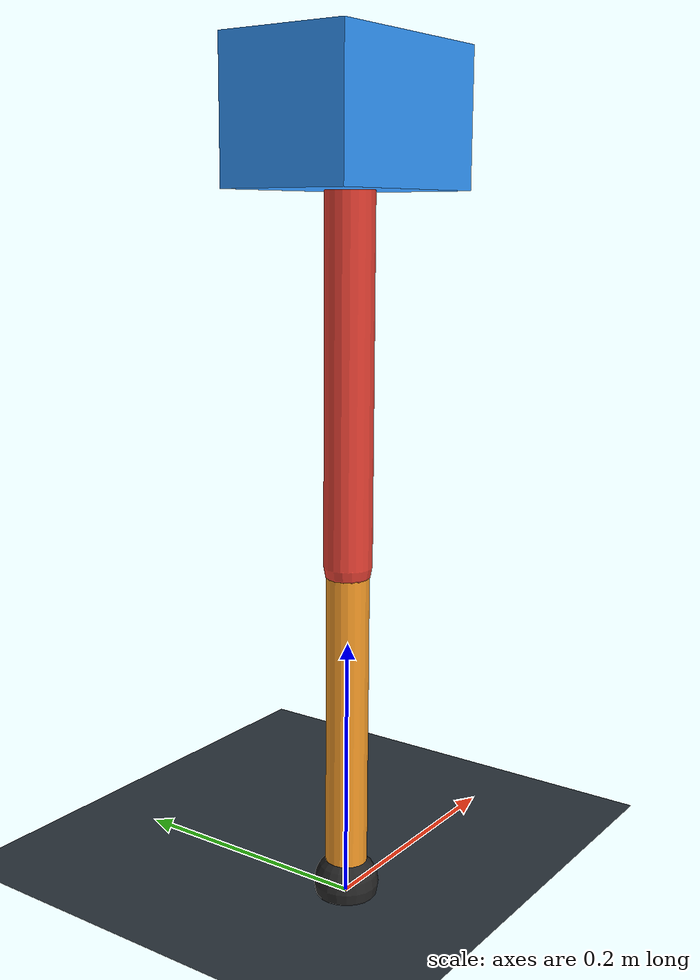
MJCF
<mujoco model="single_axis_two_bar">
  <compiler angle="radian" inertiafromgeom="true"/>
  <option timestep="0.001" integrator="implicitfast" gravity="0 0 -9.81"/>
  <default>
    <joint damping="0.08"/>
    <geom friction="1.2 0.01 0.0001" condim="3"/>
  </default>
  <worldbody>
    <geom name="floor" type="plane" size="5 5 0.1" rgba="0.18 0.22 0.25 1"/>
    <body name="carriage" pos="0 0 0.5792891674117474">
      <joint name="pole_slide" type="slide" axis="0 0 1"/>
      <geom name="payload" type="box" size="0.08 0.05 0.05" mass="3.1319370795140142" rgba="0.2 0.6 1 1"/>
      <body name="thigh" pos="0 0 0">
        <joint name="hip" type="hinge" axis="0 1 0"/>
        <geom name="thigh_link" type="capsule" fromto="0 0 0 0 0 -0.31995210603807733" size="0.018" mass="0.22797010334620002" rgba="0.9 0.25 0.2 1"/>
        <body name="shank" pos="0 0 -0.31995210603807733">
          <joint name="knee" type="hinge" axis="0 1 0"/>
          <geom name="shank_link" type="capsule" fromto="0 0 0 0 0 -0.25148002531423963" size="0.016" mass="0.17918284105174606" rgba="0.95 0.6 0.15 1"/>
          <geom name="foot" type="sphere" pos="0 0 -0.25148002531423963" size="0.025" mass="0.03" rgba="0.15 0.15 0.15 1"/>
          <site name="toe" pos="0 0 -0.25148002531423963" size="0.008"/>
        </body>
      </body>
    </body>
  </worldbody>
  <actuator>
    <motor name="hip_motor" joint="hip" ctrlrange="-52.99926012812369 52.99926012812369"/>
    <motor name="knee_motor" joint="knee" ctrlrange="-82.45249599533135 82.45249599533135"/>
  </actuator>
</mujoco>
